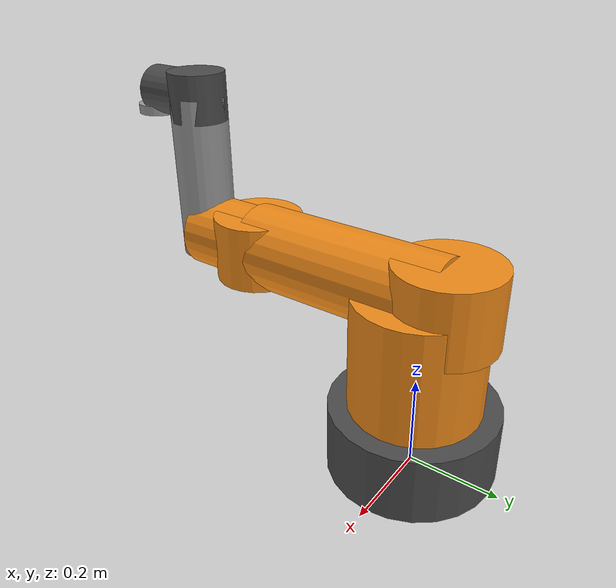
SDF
<sdf version='1.11'>
  <model name='industrial_6dof'>
    <joint name='fixed_base_joint' type='fixed'>
      <pose relative_to='__model__'>0 0 0 0 0 0</pose>
      <parent>world</parent>
      <child>base_link</child>
    </joint>
    <link name='base_link'>
      <pose relative_to='fixed_base_joint'>0 0 0 0 0 0</pose>
      <inertial>
        <pose>0 0 0.074999999999999997 0 0 0</pose>
        <mass>15</mass>
        <inertia>
          <ixx>0.20000000000000001</ixx>
          <ixy>0</ixy>
          <ixz>0</ixz>
          <iyy>0.20000000000000001</iyy>
          <iyz>0</iyz>
          <izz>0.40000000000000002</izz>
        </inertia>
      </inertial>
      <collision name='base_link_collision'>
        <pose>0 0 0.074999999999999997 0 0 0</pose>
        <geometry>
          <cylinder>
            <length>0.14999999999999999</length>
            <radius>0.17999999999999999</radius>
          </cylinder>
        </geometry>
        <surface>
          <contact>
            <ode/>
          </contact>
          <friction>
            <ode/>
          </friction>
        </surface>
      </collision>
      <visual name='base_link_visual'>
        <pose>0 0 0.074999999999999997 0 0 0</pose>
        <geometry>
          <cylinder>
            <length>0.14999999999999999</length>
            <radius>0.17999999999999999</radius>
          </cylinder>
        </geometry>
        <material>
          <script>
            <name>Gazebo/DarkGrey</name>
            <uri>file://media/materials/scripts/gazebo.material</uri>
          </script>
          <diffuse>0.25 0.25 0.275000006 1</diffuse>
          <ambient>0.25 0.25 0.275000006 1</ambient>
        </material>
      </visual>
    </link>
    <joint name='joint_1' type='revolute'>
      <pose relative_to='base_link'>0 0 0.14999999999999999 0 0 0</pose>
      <parent>base_link</parent>
      <child>link_1</child>
      <axis>
        <xyz>0 0 1</xyz>
        <limit>
          <lower>-2.96</lower>
          <upper>2.96</upper>
          <effort>300</effort>
          <velocity>2.1000000000000001</velocity>
        </limit>
        <dynamics>
          <damping>10</damping>
          <friction>5</friction>
          <spring_reference>0</spring_reference>
          <spring_stiffness>0</spring_stiffness>
        </dynamics>
      </axis>
    </joint>
    <link name='link_1'>
      <pose relative_to='joint_1'>0 0 0 0 0 0</pose>
      <inertial>
        <pose>0 0 0.125 0 0 0</pose>
        <mass>12</mass>
        <inertia>
          <ixx>0.14999999999999999</ixx>
          <ixy>0</ixy>
          <ixz>0</ixz>
          <iyy>0.14999999999999999</iyy>
          <iyz>0</iyz>
          <izz>0.10000000000000001</izz>
        </inertia>
      </inertial>
      <collision name='link_1_collision'>
        <pose>0 0 0.125 0 0 0</pose>
        <geometry>
          <cylinder>
            <length>0.25</length>
            <radius>0.14000000000000001</radius>
          </cylinder>
        </geometry>
        <surface>
          <contact>
            <ode/>
          </contact>
          <friction>
            <ode/>
          </friction>
        </surface>
      </collision>
      <visual name='link_1_visual'>
        <pose>0 0 0.125 0 0 0</pose>
        <geometry>
          <cylinder>
            <length>0.25</length>
            <radius>0.14000000000000001</radius>
          </cylinder>
        </geometry>
        <material>
          <script>
            <name>Gazebo/Orange</name>
            <uri>file://media/materials/scripts/gazebo.material</uri>
          </script>
          <diffuse>1 0.5 0 1</diffuse>
          <ambient>1 0.5 0 1</ambient>
        </material>
      </visual>
    </link>
    <joint name='joint_2' type='revolute'>
      <pose relative_to='link_1'>0 0.050000000000000003 0.25 1.5707963267948959 0 0</pose>
      <parent>link_1</parent>
      <child>link_2</child>
      <axis>
        <xyz>0 0 1</xyz>
        <limit>
          <lower>-2.3500000000000001</lower>
          <upper>2.3500000000000001</upper>
          <effort>300</effort>
          <velocity>2.1000000000000001</velocity>
        </limit>
        <dynamics>
          <damping>10</damping>
          <friction>5</friction>
          <spring_reference>0</spring_reference>
          <spring_stiffness>0</spring_stiffness>
        </dynamics>
      </axis>
    </joint>
    <link name='link_2'>
      <pose relative_to='joint_2'>0 0 0 0 0 0</pose>
      <inertial>
        <pose>0 0 0.22500000000000001 0 0 0</pose>
        <mass>10</mass>
        <inertia>
          <ixx>0.29999999999999999</ixx>
          <ixy>0</ixy>
          <ixz>0</ixz>
          <iyy>0.29999999999999999</iyy>
          <iyz>0</iyz>
          <izz>0.050000000000000003</izz>
        </inertia>
      </inertial>
      <collision name='link_2_collision'>
        <pose>0 0 0.22500000000000001 0 0 0</pose>
        <geometry>
          <cylinder>
            <length>0.45000000000000001</length>
            <radius>0.089999999999999997</radius>
          </cylinder>
        </geometry>
        <surface>
          <contact>
            <ode/>
          </contact>
          <friction>
            <ode/>
          </friction>
        </surface>
      </collision>
      <visual name='link_2_visual'>
        <pose>0 0 0.22500000000000001 0 0 0</pose>
        <geometry>
          <cylinder>
            <length>0.45000000000000001</length>
            <radius>0.089999999999999997</radius>
          </cylinder>
        </geometry>
        <material>
          <script>
            <name>Gazebo/Orange</name>
            <uri>file://media/materials/scripts/gazebo.material</uri>
          </script>
          <diffuse>1 0.5 0 1</diffuse>
          <ambient>1 0.5 0 1</ambient>
        </material>
      </visual>
      <visual name='link_2_visual_1'>
        <pose>0 0 0 1.5707963267948959 0 0</pose>
        <geometry>
          <cylinder>
            <length>0.16</length>
            <radius>0.11</radius>
          </cylinder>
        </geometry>
        <material>
          <script>
            <name>Gazebo/Orange</name>
            <uri>file://media/materials/scripts/gazebo.material</uri>
          </script>
          <diffuse>0 0 0 1</diffuse>
          <ambient>0 0 0 1</ambient>
        </material>
      </visual>
    </link>
    <joint name='joint_3' type='revolute'>
      <pose relative_to='link_2'>0 0 0.45000000000000001 0 0 0</pose>
      <parent>link_2</parent>
      <child>link_3</child>
      <axis>
        <xyz>0 0 1</xyz>
        <limit>
          <lower>-2.6099999999999999</lower>
          <upper>2.6099999999999999</upper>
          <effort>150</effort>
          <velocity>2.5</velocity>
        </limit>
        <dynamics>
          <damping>5</damping>
          <friction>2</friction>
          <spring_reference>0</spring_reference>
          <spring_stiffness>0</spring_stiffness>
        </dynamics>
      </axis>
    </joint>
    <link name='link_3'>
      <pose relative_to='joint_3'>0 0 0 0 0 0</pose>
      <inertial>
        <pose>0 0 0.074999999999999997 0 0 0</pose>
        <mass>8</mass>
        <inertia>
          <ixx>0.050000000000000003</ixx>
          <ixy>0</ixy>
          <ixz>0</ixz>
          <iyy>0.050000000000000003</iyy>
          <iyz>0</iyz>
          <izz>0.029999999999999999</izz>
        </inertia>
      </inertial>
      <collision name='link_3_collision'>
        <pose>0 0 0.074999999999999997 0 0 0</pose>
        <geometry>
          <cylinder>
            <length>0.14999999999999999</length>
            <radius>0.080000000000000002</radius>
          </cylinder>
        </geometry>
        <surface>
          <contact>
            <ode/>
          </contact>
          <friction>
            <ode/>
          </friction>
        </surface>
      </collision>
      <visual name='link_3_visual'>
        <pose>0 0 0.074999999999999997 0 0 0</pose>
        <geometry>
          <cylinder>
            <length>0.14999999999999999</length>
            <radius>0.080000000000000002</radius>
          </cylinder>
        </geometry>
        <material>
          <script>
            <name>Gazebo/Orange</name>
            <uri>file://media/materials/scripts/gazebo.material</uri>
          </script>
          <diffuse>1 0.5 0 1</diffuse>
          <ambient>1 0.5 0 1</ambient>
        </material>
      </visual>
      <visual name='link_3_visual_1'>
        <pose>0 0 0 1.5707963267948959 0 0</pose>
        <geometry>
          <cylinder>
            <length>0.14000000000000001</length>
            <radius>0.095000000000000001</radius>
          </cylinder>
        </geometry>
        <material>
          <script>
            <name>Gazebo/Orange</name>
            <uri>file://media/materials/scripts/gazebo.material</uri>
          </script>
          <diffuse>0 0 0 1</diffuse>
          <ambient>0 0 0 1</ambient>
        </material>
      </visual>
    </link>
    <joint name='joint_4' type='revolute'>
      <pose relative_to='link_3'>0 -0.050000000000000003 0.14999999999999999 -1.5707963267948959 0 0</pose>
      <parent>link_3</parent>
      <child>link_4</child>
      <axis>
        <xyz>0 0 1</xyz>
        <limit>
          <lower>-3.1400000000000001</lower>
          <upper>3.1400000000000001</upper>
          <effort>100</effort>
          <velocity>3</velocity>
        </limit>
        <dynamics>
          <damping>3</damping>
          <friction>1</friction>
          <spring_reference>0</spring_reference>
          <spring_stiffness>0</spring_stiffness>
        </dynamics>
      </axis>
    </joint>
    <link name='link_4'>
      <pose relative_to='joint_4'>0 0 0 0 0 0</pose>
      <inertial>
        <pose>0 0 0.17499999999999999 0 0 0</pose>
        <mass>5</mass>
        <inertia>
          <ixx>0.10000000000000001</ixx>
          <ixy>0</ixy>
          <ixz>0</ixz>
          <iyy>0.10000000000000001</iyy>
          <iyz>0</iyz>
          <izz>0.02</izz>
        </inertia>
      </inertial>
      <collision name='link_4_collision'>
        <pose>0 0 0.17499999999999999 0 0 0</pose>
        <geometry>
          <cylinder>
            <length>0.34999999999999998</length>
            <radius>0.059999999999999998</radius>
          </cylinder>
        </geometry>
        <surface>
          <contact>
            <ode/>
          </contact>
          <friction>
            <ode/>
          </friction>
        </surface>
      </collision>
      <visual name='link_4_visual'>
        <pose>0 0 0.17499999999999999 0 0 0</pose>
        <geometry>
          <cylinder>
            <length>0.34999999999999998</length>
            <radius>0.059999999999999998</radius>
          </cylinder>
        </geometry>
        <material>
          <script>
            <name>Gazebo/Grey</name>
            <uri>file://media/materials/scripts/gazebo.material</uri>
          </script>
          <diffuse>0.9375 0.9375 0.9375 1</diffuse>
          <ambient>0.9375 0.9375 0.9375 1</ambient>
        </material>
      </visual>
    </link>
    <joint name='joint_5' type='revolute'>
      <pose relative_to='link_4'>0 0 0.34999999999999998 1.5707963267948959 0 0</pose>
      <parent>link_4</parent>
      <child>link_5</child>
      <axis>
        <xyz>0 0 1</xyz>
        <limit>
          <lower>-2.0899999999999999</lower>
          <upper>2.0899999999999999</upper>
          <effort>50</effort>
          <velocity>3</velocity>
        </limit>
        <dynamics>
          <damping>1</damping>
          <friction>0.5</friction>
          <spring_reference>0</spring_reference>
          <spring_stiffness>0</spring_stiffness>
        </dynamics>
      </axis>
    </joint>
    <link name='link_5'>
      <pose relative_to='joint_5'>0 0 0 0 0 0</pose>
      <inertial>
        <pose>0 0 0.059999999999999998 0 0 0</pose>
        <mass>2</mass>
        <inertia>
          <ixx>0.01</ixx>
          <ixy>0</ixy>
          <ixz>0</ixz>
          <iyy>0.01</iyy>
          <iyz>0</iyz>
          <izz>0.01</izz>
        </inertia>
      </inertial>
      <collision name='link_5_collision'>
        <pose>0 0 0.059999999999999998 0 0 0</pose>
        <geometry>
          <cylinder>
            <length>0.12</length>
            <radius>0.050000000000000003</radius>
          </cylinder>
        </geometry>
        <surface>
          <contact>
            <ode/>
          </contact>
          <friction>
            <ode/>
          </friction>
        </surface>
      </collision>
      <visual name='link_5_visual'>
        <pose>0 0 0.059999999999999998 0 0 0</pose>
        <geometry>
          <cylinder>
            <length>0.12</length>
            <radius>0.050000000000000003</radius>
          </cylinder>
        </geometry>
        <material>
          <script>
            <name>Gazebo/DarkGrey</name>
            <uri>file://media/materials/scripts/gazebo.material</uri>
          </script>
          <diffuse>0.25 0.25 0.275000006 1</diffuse>
          <ambient>0.25 0.25 0.275000006 1</ambient>
        </material>
      </visual>
      <visual name='link_5_visual_1'>
        <pose>0 0 0 1.5707963267948959 0 0</pose>
        <geometry>
          <cylinder>
            <length>0.10000000000000001</length>
            <radius>0.059999999999999998</radius>
          </cylinder>
        </geometry>
        <material>
          <script>
            <name>Gazebo/DarkGrey</name>
            <uri>file://media/materials/scripts/gazebo.material</uri>
          </script>
          <diffuse>0 0 0 1</diffuse>
          <ambient>0 0 0 1</ambient>
        </material>
      </visual>
    </link>
    <joint name='joint_6' type='revolute'>
      <pose relative_to='link_5'>0 -0.050000000000000003 0.12 -1.5707963267948959 0 0</pose>
      <parent>link_5</parent>
      <child>link_6</child>
      <axis>
        <xyz>0 0 1</xyz>
        <limit>
          <lower>-6.2800000000000002</lower>
          <upper>6.2800000000000002</upper>
          <effort>20</effort>
          <velocity>4</velocity>
        </limit>
        <dynamics>
          <damping>0.5</damping>
          <friction>0.10000000000000001</friction>
          <spring_reference>0</spring_reference>
          <spring_stiffness>0</spring_stiffness>
        </dynamics>
      </axis>
    </joint>
    <link name='link_6'>
      <pose relative_to='joint_6'>0 0 0 0 0 0</pose>
      <inertial>
        <pose>0 0 0.01 0 0 0</pose>
        <mass>0.5</mass>
        <inertia>
          <ixx>0.001</ixx>
          <ixy>0</ixy>
          <ixz>0</ixz>
          <iyy>0.001</iyy>
          <iyz>0</iyz>
          <izz>0.001</izz>
        </inertia>
      </inertial>
      <collision name='link_6_collision'>
        <pose>0 0 0.01 0 0 0</pose>
        <geometry>
          <cylinder>
            <length>0.02</length>
            <radius>0.044999999999999998</radius>
          </cylinder>
        </geometry>
        <surface>
          <contact>
            <ode/>
          </contact>
          <friction>
            <ode/>
          </friction>
        </surface>
      </collision>
      <visual name='link_6_visual'>
        <pose>0 0 0.01 0 0 0</pose>
        <geometry>
          <cylinder>
            <length>0.02</length>
            <radius>0.044999999999999998</radius>
          </cylinder>
        </geometry>
        <material>
          <script>
            <name>Gazebo/Grey</name>
            <uri>file://media/materials/scripts/gazebo.material</uri>
          </script>
          <diffuse>0.9375 0.9375 0.9375 1</diffuse>
          <ambient>0.9375 0.9375 0.9375 1</ambient>
        </material>
      </visual>
    </link>
    <plugin name='ign_ros2_control::IgnitionROS2ControlPlugin' filename='gz_ros2_control-system'>
      <parameters>$(find robot_gazebo)/config/gazebo_controllers.yaml</parameters>
    </plugin>
    <frame name='joint_6-tool0' attached_to='link_6'>
      <pose>0 0 0.02 0 0 0</pose>
    </frame>
    <frame name='tool0' attached_to='joint_6-tool0'>
      <pose>0 0 0 0 0 0</pose>
    </frame>
  </model>
</sdf>
